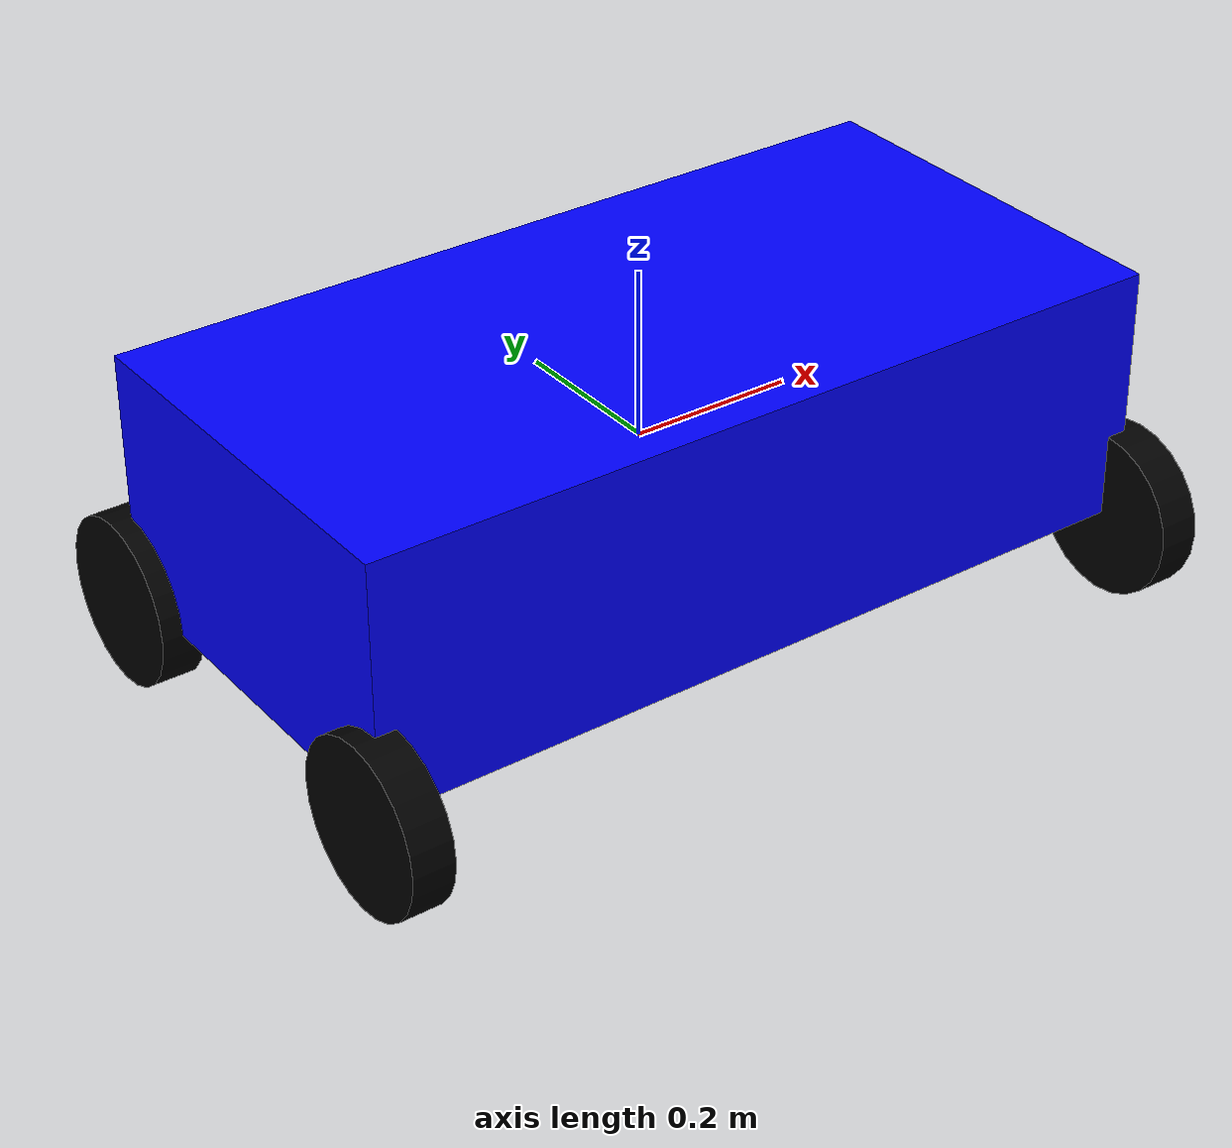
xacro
<?xml version="1.0"?>
<robot xmlns:xacro="http://ros.org/wiki/xacro" name="simple_car">
  <!-- Car body -->
  <link name="base_link">
    <visual>
      <geometry>
        <box size="1.0 0.5 0.3"/>
      </geometry>
      <material name="blue">
        <color rgba="0 0 1 1"/>
      </material>
    </visual>
    <collision>
      <geometry>
        <box size="1.0 0.5 0.3"/>
      </geometry>
    </collision>
  </link>

  <!-- Front Left Wheel -->
  <link name="front_left_wheel">
    <visual>
      <geometry>
        <cylinder length="0.05" radius="0.1"/>
      </geometry>
      <material name="black">
        <color rgba="0 0 0 1"/>
      </material>
    </visual>
    <collision>
      <geometry>
        <cylinder length="0.05" radius="0.1"/>
      </geometry>
    </collision>
  </link>
  <joint name="front_left_wheel_joint" type="continuous">
    <parent link="base_link"/>
    <child link="front_left_wheel"/>
    <origin xyz="0.5 0.25 -0.15" rpy="0 1.5708 0"/>
    <axis xyz="0 1 0"/>
  </joint>

  <!-- Front Right Wheel -->
  <link name="front_right_wheel">
    <visual>
      <geometry>
        <cylinder length="0.05" radius="0.1"/>
      </geometry>
      <material name="black">
        <color rgba="0 0 0 1"/>
      </material>
    </visual>
    <collision>
      <geometry>
        <cylinder length="0.05" radius="0.1"/>
      </geometry>
    </collision>
  </link>
  <joint name="front_right_wheel_joint" type="continuous">
    <parent link="base_link"/>
    <child link="front_right_wheel"/>
    <origin xyz="0.5 -0.25 -0.15" rpy="0 1.5708 0"/>
    <axis xyz="0 1 0"/>
  </joint>

  <!-- Rear Left Wheel -->
  <link name="rear_left_wheel">
    <visual>
      <geometry>
        <cylinder length="0.05" radius="0.1"/>
      </geometry>
      <material name="black">
        <color rgba="0 0 0 1"/>
      </material>
    </visual>
    <collision>
      <geometry>
        <cylinder length="0.05" radius="0.1"/>
      </geometry>
    </collision>
  </link>
  <joint name="rear_left_wheel_joint" type="continuous">
    <parent link="base_link"/>
    <child link="rear_left_wheel"/>
    <origin xyz="-0.5 0.25 -0.15" rpy="0 1.5708 0"/>
    <axis xyz="0 1 0"/>
  </joint>

  <!-- Rear Right Wheel -->
  <link name="rear_right_wheel">
    <visual>
      <geometry>
        <cylinder length="0.05" radius="0.1"/>
      </geometry>
      <material name="black">
        <color rgba="0 0 0 1"/>
      </material>
    </visual>
    <collision>
      <geometry>
        <cylinder length="0.05" radius="0.1"/>
      </geometry>
    </collision>
  </link>
  <joint name="rear_right_wheel_joint" type="continuous">
    <parent link="base_link"/>
    <child link="rear_right_wheel"/>
    <origin xyz="-0.5 -0.25 -0.15" rpy="0 1.5708 0"/>
    <axis xyz="0 1 0"/>
  </joint>
</robot>
